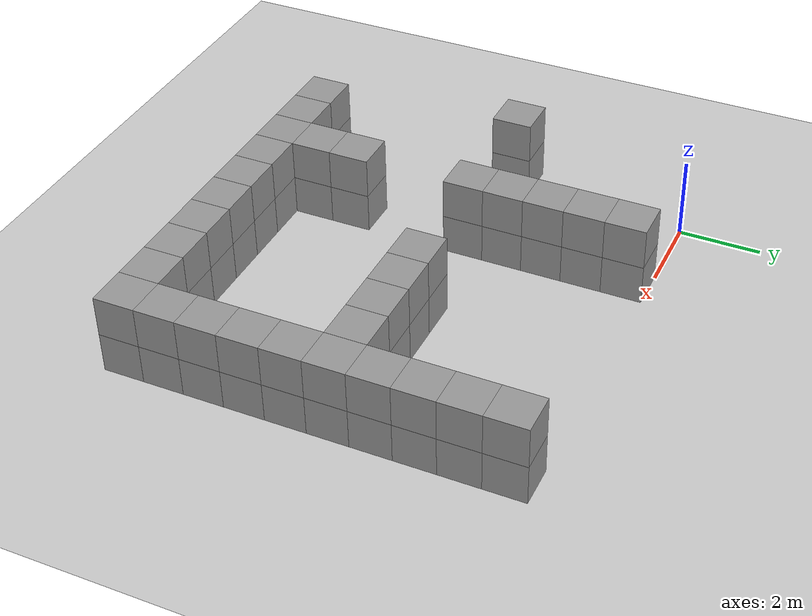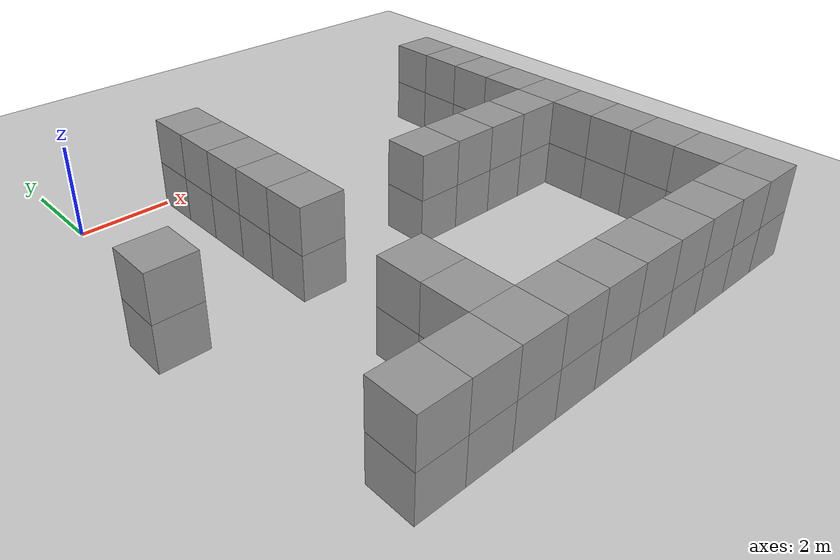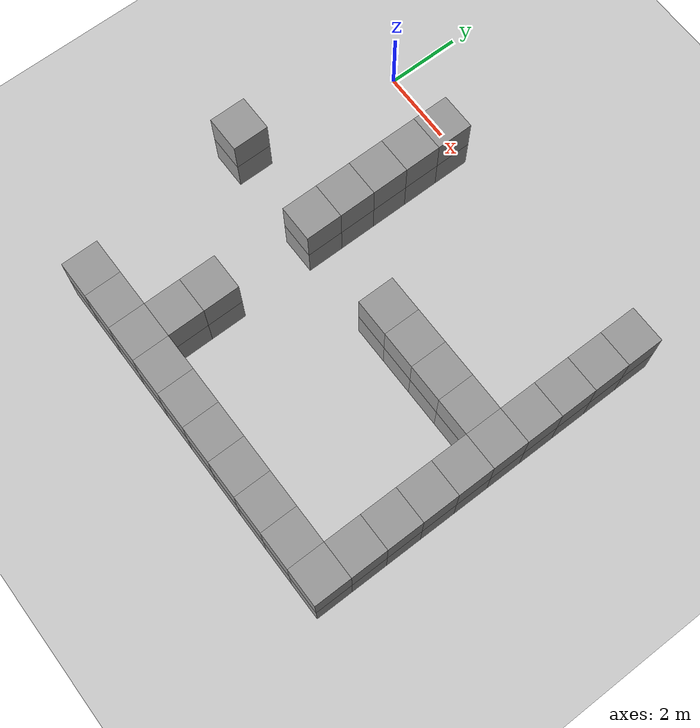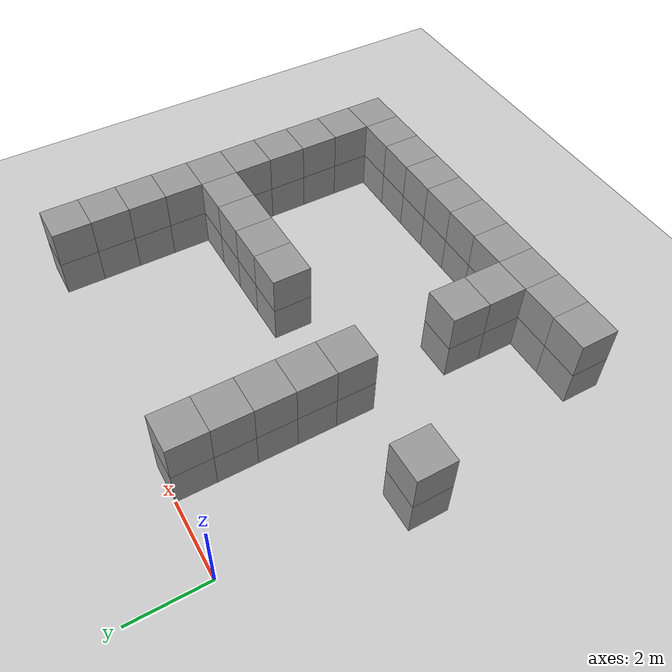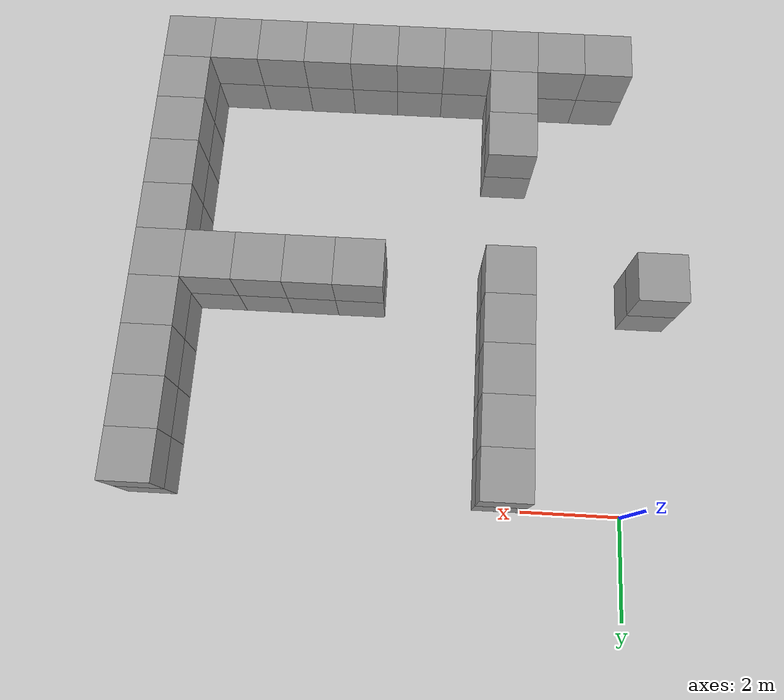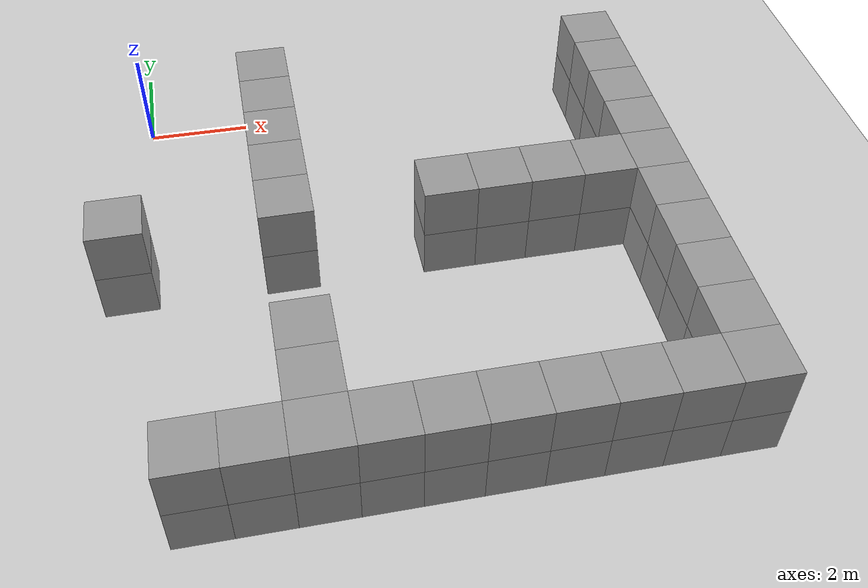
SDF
<sdf version="1.7">
 <world name="default">
  <model name="ground_plane">
   <static>1</static>
   <link name="link">
    <collision name="collision">
     <geometry><plane><normal>0 0 1</normal><size>100 100</size></plane></geometry>
     <surface>
      <contact><collide_bitmask>65535</collide_bitmask></contact>
      <friction><ode><mu>100</mu><mu2>50</mu2></ode></friction>
     </surface>
    </collision>
    <visual name="visual">
     <cast_shadows>0</cast_shadows>
     <geometry><plane><normal>0 0 1</normal><size>100 100</size></plane></geometry>
     <material>
      <script><uri>file://media/materials/scripts/gazebo.material</uri><name>Gazebo/Grey</name></script>
     </material>
    </visual>
   </link>
  </model>
  <model name="unit_box_clone_1_clone">
   <pose>9.5 -0.5 0.5 0 -0 0</pose>
   <link name="link">
    <inertial>
     <mass>1</mass>
     <inertia>
      <ixx>0.166667</ixx>
      <ixy>0</ixy>
      <ixz>0</ixz>
      <iyy>0.166667</iyy>
      <iyz>0</iyz>
      <izz>0.166667</izz>
     </inertia>
    </inertial>
    <collision name="collision"><geometry><box><size>1 1 1</size></box></geometry></collision>
    <visual name="visual">
     <geometry><box><size>1 1 1</size></box></geometry>
     <material>
      <script><name>Gazebo/Grey</name><uri>file://media/materials/scripts/gazebo.material</uri></script>
     </material>
    </visual>
   </link>
  </model>
  <model name="unit_box_clone_1_clone_0">
   <pose>9.5 -1.5 0.5 0 -0 0</pose>
   <link name="link">
    <inertial>
     <mass>1</mass>
     <inertia>
      <ixx>0.166667</ixx>
      <ixy>0</ixy>
      <ixz>0</ixz>
      <iyy>0.166667</iyy>
      <iyz>0</iyz>
      <izz>0.166667</izz>
     </inertia>
    </inertial>
    <collision name="collision"><geometry><box><size>1 1 1</size></box></geometry></collision>
    <visual name="visual">
     <geometry><box><size>1 1 1</size></box></geometry>
     <material>
      <script><name>Gazebo/Grey</name><uri>file://media/materials/scripts/gazebo.material</uri></script>
     </material>
    </visual>
   </link>
  </model>
  <model name="unit_box_clone_1_clone_0_clone">
   <pose>9.5 -2.5 0.5 0 -0 0</pose>
   <link name="link">
    <inertial>
     <mass>1</mass>
     <inertia>
      <ixx>0.166667</ixx>
      <ixy>0</ixy>
      <ixz>0</ixz>
      <iyy>0.166667</iyy>
      <iyz>0</iyz>
      <izz>0.166667</izz>
     </inertia>
    </inertial>
    <collision name="collision"><geometry><box><size>1 1 1</size></box></geometry></collision>
    <visual name="visual">
     <geometry><box><size>1 1 1</size></box></geometry>
     <material>
      <script><name>Gazebo/Grey</name><uri>file://media/materials/scripts/gazebo.material</uri></script>
     </material>
    </visual>
   </link>
  </model>
  <model name="unit_box_clone_1_clone_0_clone_clone">
   <pose>9.5 -3.5 0.5 0 -0 0</pose>
   <link name="link">
    <inertial>
     <mass>1</mass>
     <inertia>
      <ixx>0.166667</ixx>
      <ixy>0</ixy>
      <ixz>0</ixz>
      <iyy>0.166667</iyy>
      <iyz>0</iyz>
      <izz>0.166667</izz>
     </inertia>
    </inertial>
    <collision name="collision"><geometry><box><size>1 1 1</size></box></geometry></collision>
    <visual name="visual">
     <geometry><box><size>1 1 1</size></box></geometry>
     <material>
      <script><name>Gazebo/Grey</name><uri>file://media/materials/scripts/gazebo.material</uri></script>
     </material>
    </visual>
   </link>
  </model>
  <model name="unit_box_clone_1_clone_0_clone_clone_0">
   <pose>9.5 -4.5 0.5 0 -0 0</pose>
   <link name="link">
    <inertial>
     <mass>1</mass>
     <inertia>
      <ixx>0.166667</ixx>
      <ixy>0</ixy>
      <ixz>0</ixz>
      <iyy>0.166667</iyy>
      <iyz>0</iyz>
      <izz>0.166667</izz>
     </inertia>
    </inertial>
    <collision name="collision"><geometry><box><size>1 1 1</size></box></geometry></collision>
    <visual name="visual">
     <geometry><box><size>1 1 1</size></box></geometry>
     <material>
      <script><name>Gazebo/Grey</name><uri>file://media/materials/scripts/gazebo.material</uri></script>
     </material>
    </visual>
   </link>
  </model>
  <model name="unit_box_clone_1_clone_0_clone_clone_1">
   <pose>8.5 -4.5 0.5 0 -0 0</pose>
   <link name="link">
    <inertial>
     <mass>1</mass>
     <inertia>
      <ixx>0.166667</ixx>
      <ixy>0</ixy>
      <ixz>0</ixz>
      <iyy>0.166667</iyy>
      <iyz>0</iyz>
      <izz>0.166667</izz>
     </inertia>
    </inertial>
    <collision name="collision"><geometry><box><size>1 1 1</size></box></geometry></collision>
    <visual name="visual">
     <geometry><box><size>1 1 1</size></box></geometry>
     <material>
      <script><name>Gazebo/Grey</name><uri>file://media/materials/scripts/gazebo.material</uri></script>
     </material>
    </visual>
   </link>
  </model>
  <model name="unit_box_clone_1_clone_0_clone_clone_2">
   <pose>7.5 -4.5 0.5 0 -0 0</pose>
   <link name="link">
    <inertial>
     <mass>1</mass>
     <inertia>
      <ixx>0.166667</ixx>
      <ixy>0</ixy>
      <ixz>0</ixz>
      <iyy>0.166667</iyy>
      <iyz>0</iyz>
      <izz>0.166667</izz>
     </inertia>
    </inertial>
    <collision name="collision"><geometry><box><size>1 1 1</size></box></geometry></collision>
    <visual name="visual">
     <geometry><box><size>1 1 1</size></box></geometry>
     <material>
      <script><name>Gazebo/Grey</name><uri>file://media/materials/scripts/gazebo.material</uri></script>
     </material>
    </visual>
   </link>
  </model>
  <model name="unit_box_clone_1_clone_0_clone_clone_3">
   <pose>6.5 -4.5 0.5 0 -0 0</pose>
   <link name="link">
    <inertial>
     <mass>1</mass>
     <inertia>
      <ixx>0.166667</ixx>
      <ixy>0</ixy>
      <ixz>0</ixz>
      <iyy>0.166667</iyy>
      <iyz>0</iyz>
      <izz>0.166667</izz>
     </inertia>
    </inertial>
    <collision name="collision"><geometry><box><size>1 1 1</size></box></geometry></collision>
    <visual name="visual">
     <geometry><box><size>1 1 1</size></box></geometry>
     <material>
      <script><name>Gazebo/Grey</name><uri>file://media/materials/scripts/gazebo.material</uri></script>
     </material>
    </visual>
   </link>
  </model>
  <model name="unit_box_clone_1_clone_0_clone_clone_4">
   <pose>5.5 -4.5 0.5 0 -0 0</pose>
   <link name="link">
    <inertial>
     <mass>1</mass>
     <inertia>
      <ixx>0.166667</ixx>
      <ixy>0</ixy>
      <ixz>0</ixz>
      <iyy>0.166667</iyy>
      <iyz>0</iyz>
      <izz>0.166667</izz>
     </inertia>
    </inertial>
    <collision name="collision"><geometry><box><size>1 1 1</size></box></geometry></collision>
    <visual name="visual">
     <geometry><box><size>1 1 1</size></box></geometry>
     <material>
      <script><name>Gazebo/Grey</name><uri>file://media/materials/scripts/gazebo.material</uri></script>
     </material>
    </visual>
   </link>
  </model>
  <model name="unit_box_clone_0_clone_clone_3_clone">
   <pose>9.5 -0.5 1.5 0 -0 0</pose>
   <link name="link">
    <inertial>
     <mass>1</mass>
     <inertia>
      <ixx>0.166667</ixx>
      <ixy>0</ixy>
      <ixz>0</ixz>
      <iyy>0.166667</iyy>
      <iyz>0</iyz>
      <izz>0.166667</izz>
     </inertia>
    </inertial>
    <collision name="collision"><geometry><box><size>1 1 1</size></box></geometry></collision>
    <visual name="visual">
     <geometry><box><size>1 1 1</size></box></geometry>
     <material>
      <script><name>Gazebo/Grey</name><uri>file://media/materials/scripts/gazebo.material</uri></script>
     </material>
    </visual>
   </link>
  </model>
  <model name="unit_box_clone_0_clone_clone_3_clone_0">
   <pose>9.5 -1.5 1.5 0 -0 0</pose>
   <link name="link">
    <inertial>
     <mass>1</mass>
     <inertia>
      <ixx>0.166667</ixx>
      <ixy>0</ixy>
      <ixz>0</ixz>
      <iyy>0.166667</iyy>
      <iyz>0</iyz>
      <izz>0.166667</izz>
     </inertia>
    </inertial>
    <collision name="collision"><geometry><box><size>1 1 1</size></box></geometry></collision>
    <visual name="visual">
     <geometry><box><size>1 1 1</size></box></geometry>
     <material>
      <script><name>Gazebo/Grey</name><uri>file://media/materials/scripts/gazebo.material</uri></script>
     </material>
    </visual>
   </link>
  </model>
  <model name="unit_box_clone_0_clone_clone_3_clone_1">
   <pose>9.5 -2.5 1.5 0 -0 0</pose>
   <link name="link">
    <inertial>
     <mass>1</mass>
     <inertia>
      <ixx>0.166667</ixx>
      <ixy>0</ixy>
      <ixz>0</ixz>
      <iyy>0.166667</iyy>
      <iyz>0</iyz>
      <izz>0.166667</izz>
     </inertia>
    </inertial>
    <collision name="collision"><geometry><box><size>1 1 1</size></box></geometry></collision>
    <visual name="visual">
     <geometry><box><size>1 1 1</size></box></geometry>
     <material>
      <script><name>Gazebo/Grey</name><uri>file://media/materials/scripts/gazebo.material</uri></script>
     </material>
    </visual>
   </link>
  </model>
  <model name="unit_box_clone_0_clone_clone_3_clone_2">
   <pose>9.5 -3.5 1.5 0 -0 0</pose>
   <link name="link">
    <inertial>
     <mass>1</mass>
     <inertia>
      <ixx>0.166667</ixx>
      <ixy>0</ixy>
      <ixz>0</ixz>
      <iyy>0.166667</iyy>
      <iyz>0</iyz>
      <izz>0.166667</izz>
     </inertia>
    </inertial>
    <collision name="collision"><geometry><box><size>1 1 1</size></box></geometry></collision>
    <visual name="visual">
     <geometry><box><size>1 1 1</size></box></geometry>
     <material>
      <script><name>Gazebo/Grey</name><uri>file://media/materials/scripts/gazebo.material</uri></script>
     </material>
    </visual>
   </link>
  </model>
  <model name="unit_box_clone_0_clone_clone_3_clone_3">
   <pose>9.5 -4.5 1.5 0 -0 0</pose>
   <link name="link">
    <inertial>
     <mass>1</mass>
     <inertia>
      <ixx>0.166667</ixx>
      <ixy>0</ixy>
      <ixz>0</ixz>
      <iyy>0.166667</iyy>
      <iyz>0</iyz>
      <izz>0.166667</izz>
     </inertia>
    </inertial>
    <collision name="collision"><geometry><box><size>1 1 1</size></box></geometry></collision>
    <visual name="visual">
     <geometry><box><size>1 1 1</size></box></geometry>
     <material>
      <script><name>Gazebo/Grey</name><uri>file://media/materials/scripts/gazebo.material</uri></script>
     </material>
    </visual>
   </link>
  </model>
  <model name="unit_box_clone_0_clone_clone_3_clone_4">
   <pose>8.5 -4.5 1.5 0 -0 0</pose>
   <link name="link">
    <inertial>
     <mass>1</mass>
     <inertia>
      <ixx>0.166667</ixx>
      <ixy>0</ixy>
      <ixz>0</ixz>
      <iyy>0.166667</iyy>
      <iyz>0</iyz>
      <izz>0.166667</izz>
     </inertia>
    </inertial>
    <collision name="collision"><geometry><box><size>1 1 1</size></box></geometry></collision>
    <visual name="visual">
     <geometry><box><size>1 1 1</size></box></geometry>
     <material>
      <script><name>Gazebo/Grey</name><uri>file://media/materials/scripts/gazebo.material</uri></script>
     </material>
    </visual>
   </link>
  </model>
  <model name="unit_box_clone_0_clone_clone_3_clone_5">
   <pose>7.5 -4.5 1.5 0 -0 0</pose>
   <link name="link">
    <inertial>
     <mass>1</mass>
     <inertia>
      <ixx>0.166667</ixx>
      <ixy>0</ixy>
      <ixz>0</ixz>
      <iyy>0.166667</iyy>
      <iyz>0</iyz>
      <izz>0.166667</izz>
     </inertia>
    </inertial>
    <collision name="collision"><geometry><box><size>1 1 1</size></box></geometry></collision>
    <visual name="visual">
     <geometry><box><size>1 1 1</size></box></geometry>
     <material>
      <script><name>Gazebo/Grey</name><uri>file://media/materials/scripts/gazebo.material</uri></script>
     </material>
    </visual>
   </link>
  </model>
  <model name="unit_box_clone_0_clone_clone_3_clone_6">
   <pose>6.5 -4.5 1.5 0 -0 0</pose>
   <link name="link">
    <inertial>
     <mass>1</mass>
     <inertia>
      <ixx>0.166667</ixx>
      <ixy>0</ixy>
      <ixz>0</ixz>
      <iyy>0.166667</iyy>
      <iyz>0</iyz>
      <izz>0.166667</izz>
     </inertia>
    </inertial>
    <collision name="collision"><geometry><box><size>1 1 1</size></box></geometry></collision>
    <visual name="visual">
     <geometry><box><size>1 1 1</size></box></geometry>
     <material>
      <script><name>Gazebo/Grey</name><uri>file://media/materials/scripts/gazebo.material</uri></script>
     </material>
    </visual>
   </link>
  </model>
  <model name="unit_box_clone_0_clone_clone_3_clone_7">
   <pose>5.5 -4.5 1.5 0 -0 0</pose>
   <link name="link">
    <inertial>
     <mass>1</mass>
     <inertia>
      <ixx>0.166667</ixx>
      <ixy>0</ixy>
      <ixz>0</ixz>
      <iyy>0.166667</iyy>
      <iyz>0</iyz>
      <izz>0.166667</izz>
     </inertia>
    </inertial>
    <collision name="collision"><geometry><box><size>1 1 1</size></box></geometry></collision>
    <visual name="visual">
     <geometry><box><size>1 1 1</size></box></geometry>
     <material>
      <script><name>Gazebo/Grey</name><uri>file://media/materials/scripts/gazebo.material</uri></script>
     </material>
    </visual>
   </link>
  </model>
  <model name="unit_box_clone_7_clone_18_clone_3_clone_clone_3_clone_9_clone_2">
   <pose>-0.5 -4.5 0.5 0 -0 0</pose>
   <link name="link">
    <inertial>
     <mass>1</mass>
     <inertia>
      <ixx>0.166667</ixx>
      <ixy>0</ixy>
      <ixz>0</ixz>
      <iyy>0.166667</iyy>
      <iyz>0</iyz>
      <izz>0.166667</izz>
     </inertia>
    </inertial>
    <collision name="collision"><geometry><box><size>1 1 1</size></box></geometry></collision>
    <visual name="visual">
     <geometry><box><size>1 1 1</size></box></geometry>
     <material>
      <script><name>Gazebo/Grey</name><uri>file://media/materials/scripts/gazebo.material</uri></script>
     </material>
    </visual>
   </link>
  </model>
  <model name="unit_box_clone_0_clone_clone_26_clone_2_clone_1_clone_0_clone_13">
   <pose>-0.5 -4.5 1.5 0 -0 0</pose>
   <link name="link">
    <inertial>
     <mass>1</mass>
     <inertia>
      <ixx>0.166667</ixx>
      <ixy>0</ixy>
      <ixz>0</ixz>
      <iyy>0.166667</iyy>
      <iyz>0</iyz>
      <izz>0.166667</izz>
     </inertia>
    </inertial>
    <collision name="collision"><geometry><box><size>1 1 1</size></box></geometry></collision>
    <visual name="visual">
     <geometry><box><size>1 1 1</size></box></geometry>
     <material>
      <script><name>Gazebo/Grey</name><uri>file://media/materials/scripts/gazebo.material</uri></script>
     </material>
    </visual>
   </link>
  </model>
  <model name="unit_box_clone_27_clone_clone_clone_clone_clone_2_clone_2">
   <pose>2.5 -0.5 0.5 0 -0 0</pose>
   <link name="link">
    <inertial>
     <mass>1</mass>
     <inertia>
      <ixx>0.166667</ixx>
      <ixy>0</ixy>
      <ixz>0</ixz>
      <iyy>0.166667</iyy>
      <iyz>0</iyz>
      <izz>0.166667</izz>
     </inertia>
    </inertial>
    <collision name="collision"><geometry><box><size>1 1 1</size></box></geometry></collision>
    <visual name="visual">
     <geometry><box><size>1 1 1</size></box></geometry>
     <material>
      <script><name>Gazebo/Grey</name><uri>file://media/materials/scripts/gazebo.material</uri></script>
     </material>
    </visual>
   </link>
  </model>
  <model name="unit_box_clone_27_clone_clone_clone_clone_clone_2_clone_3">
   <pose>2.5 -1.5 0.5 0 -0 0</pose>
   <link name="link">
    <inertial>
     <mass>1</mass>
     <inertia>
      <ixx>0.166667</ixx>
      <ixy>0</ixy>
      <ixz>0</ixz>
      <iyy>0.166667</iyy>
      <iyz>0</iyz>
      <izz>0.166667</izz>
     </inertia>
    </inertial>
    <collision name="collision"><geometry><box><size>1 1 1</size></box></geometry></collision>
    <visual name="visual">
     <geometry><box><size>1 1 1</size></box></geometry>
     <material>
      <script><name>Gazebo/Grey</name><uri>file://media/materials/scripts/gazebo.material</uri></script>
     </material>
    </visual>
   </link>
  </model>
  <model name="unit_box_clone_27_clone_clone_clone_clone_clone_2_clone_4">
   <pose>2.5 -2.5 0.5 0 -0 0</pose>
   <link name="link">
    <inertial>
     <mass>1</mass>
     <inertia>
      <ixx>0.166667</ixx>
      <ixy>0</ixy>
      <ixz>0</ixz>
      <iyy>0.166667</iyy>
      <iyz>0</iyz>
      <izz>0.166667</izz>
     </inertia>
    </inertial>
    <collision name="collision"><geometry><box><size>1 1 1</size></box></geometry></collision>
    <visual name="visual">
     <geometry><box><size>1 1 1</size></box></geometry>
     <material>
      <script><name>Gazebo/Grey</name><uri>file://media/materials/scripts/gazebo.material</uri></script>
     </material>
    </visual>
   </link>
  </model>
  <model name="unit_box_clone_27_clone_clone_clone_clone_clone_2_clone_5">
   <pose>2.5 -3.5 0.5 0 -0 0</pose>
   <link name="link">
    <inertial>
     <mass>1</mass>
     <inertia>
      <ixx>0.166667</ixx>
      <ixy>0</ixy>
      <ixz>0</ixz>
      <iyy>0.166667</iyy>
      <iyz>0</iyz>
      <izz>0.166667</izz>
     </inertia>
    </inertial>
    <collision name="collision"><geometry><box><size>1 1 1</size></box></geometry></collision>
    <visual name="visual">
     <geometry><box><size>1 1 1</size></box></geometry>
     <material>
      <script><name>Gazebo/Grey</name><uri>file://media/materials/scripts/gazebo.material</uri></script>
     </material>
    </visual>
   </link>
  </model>
  <model name="unit_box_clone_27_clone_clone_clone_clone_clone_2_clone_6">
   <pose>2.5 -4.5 0.5 0 -0 0</pose>
   <link name="link">
    <inertial>
     <mass>1</mass>
     <inertia>
      <ixx>0.166667</ixx>
      <ixy>0</ixy>
      <ixz>0</ixz>
      <iyy>0.166667</iyy>
      <iyz>0</iyz>
      <izz>0.166667</izz>
     </inertia>
    </inertial>
    <collision name="collision"><geometry><box><size>1 1 1</size></box></geometry></collision>
    <visual name="visual">
     <geometry><box><size>1 1 1</size></box></geometry>
     <material>
      <script><name>Gazebo/Grey</name><uri>file://media/materials/scripts/gazebo.material</uri></script>
     </material>
    </visual>
   </link>
  </model>
  <model name="unit_box_clone_0_clone_clone_26_clone_2_clone_1_clone_0_clone_17_clone_2">
   <pose>2.5 -0.5 1.5 0 -0 0</pose>
   <link name="link">
    <inertial>
     <mass>1</mass>
     <inertia>
      <ixx>0.166667</ixx>
      <ixy>0</ixy>
      <ixz>0</ixz>
      <iyy>0.166667</iyy>
      <iyz>0</iyz>
      <izz>0.166667</izz>
     </inertia>
    </inertial>
    <collision name="collision"><geometry><box><size>1 1 1</size></box></geometry></collision>
    <visual name="visual">
     <geometry><box><size>1 1 1</size></box></geometry>
     <material>
      <script><name>Gazebo/Grey</name><uri>file://media/materials/scripts/gazebo.material</uri></script>
     </material>
    </visual>
   </link>
  </model>
  <model name="unit_box_clone_0_clone_clone_26_clone_2_clone_1_clone_0_clone_17_clone_3">
   <pose>2.5 -1.5 1.5 0 -0 0</pose>
   <link name="link">
    <inertial>
     <mass>1</mass>
     <inertia>
      <ixx>0.166667</ixx>
      <ixy>0</ixy>
      <ixz>0</ixz>
      <iyy>0.166667</iyy>
      <iyz>0</iyz>
      <izz>0.166667</izz>
     </inertia>
    </inertial>
    <collision name="collision"><geometry><box><size>1 1 1</size></box></geometry></collision>
    <visual name="visual">
     <geometry><box><size>1 1 1</size></box></geometry>
     <material>
      <script><name>Gazebo/Grey</name><uri>file://media/materials/scripts/gazebo.material</uri></script>
     </material>
    </visual>
   </link>
  </model>
  <model name="unit_box_clone_0_clone_clone_26_clone_2_clone_1_clone_0_clone_17_clone_4">
   <pose>2.5 -2.5 1.5 0 -0 0</pose>
   <link name="link">
    <inertial>
     <mass>1</mass>
     <inertia>
      <ixx>0.166667</ixx>
      <ixy>0</ixy>
      <ixz>0</ixz>
      <iyy>0.166667</iyy>
      <iyz>0</iyz>
      <izz>0.166667</izz>
     </inertia>
    </inertial>
    <collision name="collision"><geometry><box><size>1 1 1</size></box></geometry></collision>
    <visual name="visual">
     <geometry><box><size>1 1 1</size></box></geometry>
     <material>
      <script><name>Gazebo/Grey</name><uri>file://media/materials/scripts/gazebo.material</uri></script>
     </material>
    </visual>
   </link>
  </model>
  <model name="unit_box_clone_0_clone_clone_26_clone_2_clone_1_clone_0_clone_17_clone_5">
   <pose>2.5 -3.5 1.5 0 -0 0</pose>
   <link name="link">
    <inertial>
     <mass>1</mass>
     <inertia>
      <ixx>0.166667</ixx>
      <ixy>0</ixy>
      <ixz>0</ixz>
      <iyy>0.166667</iyy>
      <iyz>0</iyz>
      <izz>0.166667</izz>
     </inertia>
    </inertial>
    <collision name="collision"><geometry><box><size>1 1 1</size></box></geometry></collision>
    <visual name="visual">
     <geometry><box><size>1 1 1</size></box></geometry>
     <material>
      <script><name>Gazebo/Grey</name><uri>file://media/materials/scripts/gazebo.material</uri></script>
     </material>
    </visual>
   </link>
  </model>
  <model name="unit_box_clone_0_clone_clone_26_clone_2_clone_1_clone_0_clone_17_clone_6">
   <pose>2.5 -4.5 1.5 0 -0 0</pose>
   <link name="link">
    <inertial>
     <mass>1</mass>
     <inertia>
      <ixx>0.166667</ixx>
      <ixy>0</ixy>
      <ixz>0</ixz>
      <iyy>0.166667</iyy>
      <iyz>0</iyz>
      <izz>0.166667</izz>
     </inertia>
    </inertial>
    <collision name="collision"><geometry><box><size>1 1 1</size></box></geometry></collision>
    <visual name="visual">
     <geometry><box><size>1 1 1</size></box></geometry>
     <material>
      <script><name>Gazebo/Grey</name><uri>file://media/materials/scripts/gazebo.material</uri></script>
     </material>
    </visual>
   </link>
  </model>
  <model name="unit_box_clone_7_clone_9_clone_34_clone_3">
   <pose>0.5 -9.5 0.5 0 -0 0</pose>
   <link name="link">
    <inertial>
     <mass>1</mass>
     <inertia>
      <ixx>0.166667</ixx>
      <ixy>0</ixy>
      <ixz>0</ixz>
      <iyy>0.166667</iyy>
      <iyz>0</iyz>
      <izz>0.166667</izz>
     </inertia>
    </inertial>
    <collision name="collision"><geometry><box><size>1 1 1</size></box></geometry></collision>
    <visual name="visual">
     <geometry><box><size>1 1 1</size></box></geometry>
     <material>
      <script><name>Gazebo/Grey</name><uri>file://media/materials/scripts/gazebo.material</uri></script>
     </material>
    </visual>
   </link>
  </model>
  <model name="unit_box_clone_7_clone_9_clone_34_clone_4">
   <pose>1.5 -9.5 0.5 0 -0 0</pose>
   <link name="link">
    <inertial>
     <mass>1</mass>
     <inertia>
      <ixx>0.166667</ixx>
      <ixy>0</ixy>
      <ixz>0</ixz>
      <iyy>0.166667</iyy>
      <iyz>0</iyz>
      <izz>0.166667</izz>
     </inertia>
    </inertial>
    <collision name="collision"><geometry><box><size>1 1 1</size></box></geometry></collision>
    <visual name="visual">
     <geometry><box><size>1 1 1</size></box></geometry>
     <material>
      <script><name>Gazebo/Grey</name><uri>file://media/materials/scripts/gazebo.material</uri></script>
     </material>
    </visual>
   </link>
  </model>
  <model name="unit_box_clone_7_clone_9_clone_34_clone_5">
   <pose>2.5 -9.5 0.5 0 -0 0</pose>
   <link name="link">
    <inertial>
     <mass>1</mass>
     <inertia>
      <ixx>0.166667</ixx>
      <ixy>0</ixy>
      <ixz>0</ixz>
      <iyy>0.166667</iyy>
      <iyz>0</iyz>
      <izz>0.166667</izz>
     </inertia>
    </inertial>
    <collision name="collision"><geometry><box><size>1 1 1</size></box></geometry></collision>
    <visual name="visual">
     <geometry><box><size>1 1 1</size></box></geometry>
     <material>
      <script><name>Gazebo/Grey</name><uri>file://media/materials/scripts/gazebo.material</uri></script>
     </material>
    </visual>
   </link>
  </model>
  <model name="unit_box_clone_7_clone_9_clone_34_clone_6">
   <pose>2.5 -8.5 0.5 0 -0 0</pose>
   <link name="link">
    <inertial>
     <mass>1</mass>
     <inertia>
      <ixx>0.166667</ixx>
      <ixy>0</ixy>
      <ixz>0</ixz>
      <iyy>0.166667</iyy>
      <iyz>0</iyz>
      <izz>0.166667</izz>
     </inertia>
    </inertial>
    <collision name="collision"><geometry><box><size>1 1 1</size></box></geometry></collision>
    <visual name="visual">
     <geometry><box><size>1 1 1</size></box></geometry>
     <material>
      <script><name>Gazebo/Grey</name><uri>file://media/materials/scripts/gazebo.material</uri></script>
     </material>
    </visual>
   </link>
  </model>
  <model name="unit_box_clone_7_clone_9_clone_34_clone_7">
   <pose>2.5 -7.5 0.5 0 -0 0</pose>
   <link name="link">
    <inertial>
     <mass>1</mass>
     <inertia>
      <ixx>0.166667</ixx>
      <ixy>0</ixy>
      <ixz>0</ixz>
      <iyy>0.166667</iyy>
      <iyz>0</iyz>
      <izz>0.166667</izz>
     </inertia>
    </inertial>
    <collision name="collision"><geometry><box><size>1 1 1</size></box></geometry></collision>
    <visual name="visual">
     <geometry><box><size>1 1 1</size></box></geometry>
     <material>
      <script><name>Gazebo/Grey</name><uri>file://media/materials/scripts/gazebo.material</uri></script>
     </material>
    </visual>
   </link>
  </model>
  <model name="unit_box_clone_7_clone_9_clone_34_clone_8">
   <pose>3.5 -9.5 0.5 0 -0 0</pose>
   <link name="link">
    <inertial>
     <mass>1</mass>
     <inertia>
      <ixx>0.166667</ixx>
      <ixy>0</ixy>
      <ixz>0</ixz>
      <iyy>0.166667</iyy>
      <iyz>0</iyz>
      <izz>0.166667</izz>
     </inertia>
    </inertial>
    <collision name="collision"><geometry><box><size>1 1 1</size></box></geometry></collision>
    <visual name="visual">
     <geometry><box><size>1 1 1</size></box></geometry>
     <material>
      <script><name>Gazebo/Grey</name><uri>file://media/materials/scripts/gazebo.material</uri></script>
     </material>
    </visual>
   </link>
  </model>
  <model name="unit_box_clone_7_clone_9_clone_34_clone_9">
   <pose>4.5 -9.5 0.5 0 -0 0</pose>
   <link name="link">
    <inertial>
     <mass>1</mass>
     <inertia>
      <ixx>0.166667</ixx>
      <ixy>0</ixy>
      <ixz>0</ixz>
      <iyy>0.166667</iyy>
      <iyz>0</iyz>
      <izz>0.166667</izz>
     </inertia>
    </inertial>
    <collision name="collision"><geometry><box><size>1 1 1</size></box></geometry></collision>
    <visual name="visual">
     <geometry><box><size>1 1 1</size></box></geometry>
     <material>
      <script><name>Gazebo/Grey</name><uri>file://media/materials/scripts/gazebo.material</uri></script>
     </material>
    </visual>
   </link>
  </model>
  <model name="unit_box_clone_7_clone_9_clone_34_clone_10">
   <pose>5.5 -9.5 0.5 0 -0 0</pose>
   <link name="link">
    <inertial>
     <mass>1</mass>
     <inertia>
      <ixx>0.166667</ixx>
      <ixy>0</ixy>
      <ixz>0</ixz>
      <iyy>0.166667</iyy>
      <iyz>0</iyz>
      <izz>0.166667</izz>
     </inertia>
    </inertial>
    <collision name="collision"><geometry><box><size>1 1 1</size></box></geometry></collision>
    <visual name="visual">
     <geometry><box><size>1 1 1</size></box></geometry>
     <material>
      <script><name>Gazebo/Grey</name><uri>file://media/materials/scripts/gazebo.material</uri></script>
     </material>
    </visual>
   </link>
  </model>
  <model name="unit_box_clone_7_clone_9_clone_34_clone_11">
   <pose>6.5 -9.5 0.5 0 -0 0</pose>
   <link name="link">
    <inertial>
     <mass>1</mass>
     <inertia>
      <ixx>0.166667</ixx>
      <ixy>0</ixy>
      <ixz>0</ixz>
      <iyy>0.166667</iyy>
      <iyz>0</iyz>
      <izz>0.166667</izz>
     </inertia>
    </inertial>
    <collision name="collision"><geometry><box><size>1 1 1</size></box></geometry></collision>
    <visual name="visual">
     <geometry><box><size>1 1 1</size></box></geometry>
     <material>
      <script><name>Gazebo/Grey</name><uri>file://media/materials/scripts/gazebo.material</uri></script>
     </material>
    </visual>
   </link>
  </model>
  <model name="unit_box_clone_7_clone_9_clone_34_clone_12">
   <pose>7.5 -9.5 0.5 0 -0 0</pose>
   <link name="link">
    <inertial>
     <mass>1</mass>
     <inertia>
      <ixx>0.166667</ixx>
      <ixy>0</ixy>
      <ixz>0</ixz>
      <iyy>0.166667</iyy>
      <iyz>0</iyz>
      <izz>0.166667</izz>
     </inertia>
    </inertial>
    <collision name="collision"><geometry><box><size>1 1 1</size></box></geometry></collision>
    <visual name="visual">
     <geometry><box><size>1 1 1</size></box></geometry>
     <material>
      <script><name>Gazebo/Grey</name><uri>file://media/materials/scripts/gazebo.material</uri></script>
     </material>
    </visual>
   </link>
  </model>
  <model name="unit_box_clone_7_clone_9_clone_34_clone_13">
   <pose>8.5 -9.5 0.5 0 -0 0</pose>
   <link name="link">
    <inertial>
     <mass>1</mass>
     <inertia>
      <ixx>0.166667</ixx>
      <ixy>0</ixy>
      <ixz>0</ixz>
      <iyy>0.166667</iyy>
      <iyz>0</iyz>
      <izz>0.166667</izz>
     </inertia>
    </inertial>
    <collision name="collision"><geometry><box><size>1 1 1</size></box></geometry></collision>
    <visual name="visual">
     <geometry><box><size>1 1 1</size></box></geometry>
     <material>
      <script><name>Gazebo/Grey</name><uri>file://media/materials/scripts/gazebo.material</uri></script>
     </material>
    </visual>
   </link>
  </model>
  <model name="unit_box_clone_7_clone_9_clone_34_clone_14">
   <pose>9.5 -9.5 0.5 0 -0 0</pose>
   <link name="link">
    <inertial>
     <mass>1</mass>
     <inertia>
      <ixx>0.166667</ixx>
      <ixy>0</ixy>
      <ixz>0</ixz>
      <iyy>0.166667</iyy>
      <iyz>0</iyz>
      <izz>0.166667</izz>
     </inertia>
    </inertial>
    <collision name="collision"><geometry><box><size>1 1 1</size></box></geometry></collision>
    <visual name="visual">
     <geometry><box><size>1 1 1</size></box></geometry>
     <material>
      <script><name>Gazebo/Grey</name><uri>file://media/materials/scripts/gazebo.material</uri></script>
     </material>
    </visual>
   </link>
  </model>
  <model name="unit_box_clone_7_clone_9_clone_34_clone_15">
   <pose>9.5 -8.5 0.5 0 -0 0</pose>
   <link name="link">
    <inertial>
     <mass>1</mass>
     <inertia>
      <ixx>0.166667</ixx>
      <ixy>0</ixy>
      <ixz>0</ixz>
      <iyy>0.166667</iyy>
      <iyz>0</iyz>
      <izz>0.166667</izz>
     </inertia>
    </inertial>
    <collision name="collision"><geometry><box><size>1 1 1</size></box></geometry></collision>
    <visual name="visual">
     <geometry><box><size>1 1 1</size></box></geometry>
     <material>
      <script><name>Gazebo/Grey</name><uri>file://media/materials/scripts/gazebo.material</uri></script>
     </material>
    </visual>
   </link>
  </model>
  <model name="unit_box_clone_7_clone_9_clone_34_clone_16">
   <pose>9.5 -7.5 0.5 0 -0 0</pose>
   <link name="link">
    <inertial>
     <mass>1</mass>
     <inertia>
      <ixx>0.166667</ixx>
      <ixy>0</ixy>
      <ixz>0</ixz>
      <iyy>0.166667</iyy>
      <iyz>0</iyz>
      <izz>0.166667</izz>
     </inertia>
    </inertial>
    <collision name="collision"><geometry><box><size>1 1 1</size></box></geometry></collision>
    <visual name="visual">
     <geometry><box><size>1 1 1</size></box></geometry>
     <material>
      <script><name>Gazebo/Grey</name><uri>file://media/materials/scripts/gazebo.material</uri></script>
     </material>
    </visual>
   </link>
  </model>
  <model name="unit_box_clone_7_clone_9_clone_34_clone_17">
   <pose>9.5 -6.5 0.5 0 -0 0</pose>
   <link name="link">
    <inertial>
     <mass>1</mass>
     <inertia>
      <ixx>0.166667</ixx>
      <ixy>0</ixy>
      <ixz>0</ixz>
      <iyy>0.166667</iyy>
      <iyz>0</iyz>
      <izz>0.166667</izz>
     </inertia>
    </inertial>
    <collision name="collision"><geometry><box><size>1 1 1</size></box></geometry></collision>
    <visual name="visual">
     <geometry><box><size>1 1 1</size></box></geometry>
     <material>
      <script><name>Gazebo/Grey</name><uri>file://media/materials/scripts/gazebo.material</uri></script>
     </material>
    </visual>
   </link>
  </model>
  <model name="unit_box_clone_7_clone_9_clone_34_clone_18">
   <pose>9.5 -5.5 0.5 0 -0 0</pose>
   <link name="link">
    <inertial>
     <mass>1</mass>
     <inertia>
      <ixx>0.166667</ixx>
      <ixy>0</ixy>
      <ixz>0</ixz>
      <iyy>0.166667</iyy>
      <iyz>0</iyz>
      <izz>0.166667</izz>
     </inertia>
    </inertial>
    <collision name="collision"><geometry><box><size>1 1 1</size></box></geometry></collision>
    <visual name="visual">
     <geometry><box><size>1 1 1</size></box></geometry>
     <material>
      <script><name>Gazebo/Grey</name><uri>file://media/materials/scripts/gazebo.material</uri></script>
     </material>
    </visual>
   </link>
  </model>
  <model name="unit_box_clone_0_clone_clone_26_clone_18_clone_34">
   <pose>2.5 -7.5 1.5 0 -0 0</pose>
   <link name="link">
    <inertial>
     <mass>1</mass>
     <inertia>
      <ixx>0.166667</ixx>
      <ixy>0</ixy>
      <ixz>0</ixz>
      <iyy>0.166667</iyy>
      <iyz>0</iyz>
      <izz>0.166667</izz>
     </inertia>
    </inertial>
    <collision name="collision"><geometry><box><size>1 1 1</size></box></geometry></collision>
    <visual name="visual">
     <geometry><box><size>1 1 1</size></box></geometry>
     <material>
      <script><name>Gazebo/Grey</name><uri>file://media/materials/scripts/gazebo.material</uri></script>
     </material>
    </visual>
   </link>
  </model>
  <model name="unit_box_clone_0_clone_clone_26_clone_18_clone_35">
   <pose>2.5 -8.5 1.5 0 -0 0</pose>
   <link name="link">
    <inertial>
     <mass>1</mass>
     <inertia>
      <ixx>0.166667</ixx>
      <ixy>0</ixy>
      <ixz>0</ixz>
      <iyy>0.166667</iyy>
      <iyz>0</iyz>
      <izz>0.166667</izz>
     </inertia>
    </inertial>
    <collision name="collision"><geometry><box><size>1 1 1</size></box></geometry></collision>
    <visual name="visual">
     <geometry><box><size>1 1 1</size></box></geometry>
     <material>
      <script><name>Gazebo/Grey</name><uri>file://media/materials/scripts/gazebo.material</uri></script>
     </material>
    </visual>
   </link>
  </model>
  <model name="unit_box_clone_0_clone_clone_26_clone_18_clone_36">
   <pose>2.5 -9.5 1.5 0 -0 0</pose>
   <link name="link">
    <inertial>
     <mass>1</mass>
     <inertia>
      <ixx>0.166667</ixx>
      <ixy>0</ixy>
      <ixz>0</ixz>
      <iyy>0.166667</iyy>
      <iyz>0</iyz>
      <izz>0.166667</izz>
     </inertia>
    </inertial>
    <collision name="collision"><geometry><box><size>1 1 1</size></box></geometry></collision>
    <visual name="visual">
     <geometry><box><size>1 1 1</size></box></geometry>
     <material>
      <script><name>Gazebo/Grey</name><uri>file://media/materials/scripts/gazebo.material</uri></script>
     </material>
    </visual>
   </link>
  </model>
  <model name="unit_box_clone_0_clone_clone_26_clone_18_clone_41">
   <pose>0.5 -9.5 1.5 0 -0 0</pose>
   <link name="link">
    <inertial>
     <mass>1</mass>
     <inertia>
      <ixx>0.166667</ixx>
      <ixy>0</ixy>
      <ixz>0</ixz>
      <iyy>0.166667</iyy>
      <iyz>0</iyz>
      <izz>0.166667</izz>
     </inertia>
    </inertial>
    <collision name="collision"><geometry><box><size>1 1 1</size></box></geometry></collision>
    <visual name="visual">
     <geometry><box><size>1 1 1</size></box></geometry>
     <material>
      <script><name>Gazebo/Grey</name><uri>file://media/materials/scripts/gazebo.material</uri></script>
     </material>
    </visual>
   </link>
  </model>
  <model name="unit_box_clone_0_clone_clone_26_clone_18_clone_42">
   <pose>1.5 -9.5 1.5 0 -0 0</pose>
   <link name="link">
    <inertial>
     <mass>1</mass>
     <inertia>
      <ixx>0.166667</ixx>
      <ixy>0</ixy>
      <ixz>0</ixz>
      <iyy>0.166667</iyy>
      <iyz>0</iyz>
      <izz>0.166667</izz>
     </inertia>
    </inertial>
    <collision name="collision"><geometry><box><size>1 1 1</size></box></geometry></collision>
    <visual name="visual">
     <geometry><box><size>1 1 1</size></box></geometry>
     <material>
      <script><name>Gazebo/Grey</name><uri>file://media/materials/scripts/gazebo.material</uri></script>
     </material>
    </visual>
   </link>
  </model>
  <model name="unit_box_clone_0_clone_clone_26_clone_18_clone_43">
   <pose>9.5 -5.5 1.5 0 -0 0</pose>
   <link name="link">
    <inertial>
     <mass>1</mass>
     <inertia>
      <ixx>0.166667</ixx>
      <ixy>0</ixy>
      <ixz>0</ixz>
      <iyy>0.166667</iyy>
      <iyz>0</iyz>
      <izz>0.166667</izz>
     </inertia>
    </inertial>
    <collision name="collision"><geometry><box><size>1 1 1</size></box></geometry></collision>
    <visual name="visual">
     <geometry><box><size>1 1 1</size></box></geometry>
     <material>
      <script><name>Gazebo/Grey</name><uri>file://media/materials/scripts/gazebo.material</uri></script>
     </material>
    </visual>
   </link>
  </model>
  <model name="unit_box_clone_0_clone_clone_26_clone_18_clone_44">
   <pose>9.5 -6.5 1.5 0 -0 0</pose>
   <link name="link">
    <inertial>
     <mass>1</mass>
     <inertia>
      <ixx>0.166667</ixx>
      <ixy>0</ixy>
      <ixz>0</ixz>
      <iyy>0.166667</iyy>
      <iyz>0</iyz>
      <izz>0.166667</izz>
     </inertia>
    </inertial>
    <collision name="collision"><geometry><box><size>1 1 1</size></box></geometry></collision>
    <visual name="visual">
     <geometry><box><size>1 1 1</size></box></geometry>
     <material>
      <script><name>Gazebo/Grey</name><uri>file://media/materials/scripts/gazebo.material</uri></script>
     </material>
    </visual>
   </link>
  </model>
  <model name="unit_box_clone_0_clone_clone_26_clone_18_clone_45">
   <pose>9.5 -7.5 1.5 0 -0 0</pose>
   <link name="link">
    <inertial>
     <mass>1</mass>
     <inertia>
      <ixx>0.166667</ixx>
      <ixy>0</ixy>
      <ixz>0</ixz>
      <iyy>0.166667</iyy>
      <iyz>0</iyz>
      <izz>0.166667</izz>
     </inertia>
    </inertial>
    <collision name="collision"><geometry><box><size>1 1 1</size></box></geometry></collision>
    <visual name="visual">
     <geometry><box><size>1 1 1</size></box></geometry>
     <material>
      <script><name>Gazebo/Grey</name><uri>file://media/materials/scripts/gazebo.material</uri></script>
     </material>
    </visual>
   </link>
  </model>
  <model name="unit_box_clone_0_clone_clone_26_clone_18_clone_46">
   <pose>9.5 -8.5 1.5 0 -0 0</pose>
   <link name="link">
    <inertial>
     <mass>1</mass>
     <inertia>
      <ixx>0.166667</ixx>
      <ixy>0</ixy>
      <ixz>0</ixz>
      <iyy>0.166667</iyy>
      <iyz>0</iyz>
      <izz>0.166667</izz>
     </inertia>
    </inertial>
    <collision name="collision"><geometry><box><size>1 1 1</size></box></geometry></collision>
    <visual name="visual">
     <geometry><box><size>1 1 1</size></box></geometry>
     <material>
      <script><name>Gazebo/Grey</name><uri>file://media/materials/scripts/gazebo.material</uri></script>
     </material>
    </visual>
   </link>
  </model>
  <model name="unit_box_clone_0_clone_clone_26_clone_18_clone_47">
   <pose>8.5 -9.5 1.5 0 -0 0</pose>
   <link name="link">
    <inertial>
     <mass>1</mass>
     <inertia>
      <ixx>0.166667</ixx>
      <ixy>0</ixy>
      <ixz>0</ixz>
      <iyy>0.166667</iyy>
      <iyz>0</iyz>
      <izz>0.166667</izz>
     </inertia>
    </inertial>
    <collision name="collision"><geometry><box><size>1 1 1</size></box></geometry></collision>
    <visual name="visual">
     <geometry><box><size>1 1 1</size></box></geometry>
     <material>
      <script><name>Gazebo/Grey</name><uri>file://media/materials/scripts/gazebo.material</uri></script>
     </material>
    </visual>
   </link>
  </model>
  <model name="unit_box_clone_0_clone_clone_26_clone_18_clone_48">
   <pose>3.5 -9.5 1.5 0 -0 0</pose>
   <link name="link">
    <inertial>
     <mass>1</mass>
     <inertia>
      <ixx>0.166667</ixx>
      <ixy>0</ixy>
      <ixz>0</ixz>
      <iyy>0.166667</iyy>
      <iyz>0</iyz>
      <izz>0.166667</izz>
     </inertia>
    </inertial>
    <collision name="collision"><geometry><box><size>1 1 1</size></box></geometry></collision>
    <visual name="visual">
     <geometry><box><size>1 1 1</size></box></geometry>
     <material>
      <script><name>Gazebo/Grey</name><uri>file://media/materials/scripts/gazebo.material</uri></script>
     </material>
    </visual>
   </link>
  </model>
  <model name="unit_box_clone_0_clone_clone_26_clone_18_clone_49">
   <pose>4.5 -9.5 1.5 0 -0 0</pose>
   <link name="link">
    <inertial>
     <mass>1</mass>
     <inertia>
      <ixx>0.166667</ixx>
      <ixy>0</ixy>
      <ixz>0</ixz>
      <iyy>0.166667</iyy>
      <iyz>0</iyz>
      <izz>0.166667</izz>
     </inertia>
    </inertial>
    <collision name="collision"><geometry><box><size>1 1 1</size></box></geometry></collision>
    <visual name="visual">
     <geometry><box><size>1 1 1</size></box></geometry>
     <material>
      <script><name>Gazebo/Grey</name><uri>file://media/materials/scripts/gazebo.material</uri></script>
     </material>
    </visual>
   </link>
  </model>
  <model name="unit_box_clone_0_clone_clone_26_clone_18_clone_50">
   <pose>5.5 -9.5 1.5 0 -0 0</pose>
   <link name="link">
    <inertial>
     <mass>1</mass>
     <inertia>
      <ixx>0.166667</ixx>
      <ixy>0</ixy>
      <ixz>0</ixz>
      <iyy>0.166667</iyy>
      <iyz>0</iyz>
      <izz>0.166667</izz>
     </inertia>
    </inertial>
    <collision name="collision"><geometry><box><size>1 1 1</size></box></geometry></collision>
    <visual name="visual">
     <geometry><box><size>1 1 1</size></box></geometry>
     <material>
      <script><name>Gazebo/Grey</name><uri>file://media/materials/scripts/gazebo.material</uri></script>
     </material>
    </visual>
   </link>
  </model>
  <model name="unit_box_clone_0_clone_clone_26_clone_18_clone_51">
   <pose>6.5 -9.5 1.5 0 -0 0</pose>
   <link name="link">
    <inertial>
     <mass>1</mass>
     <inertia>
      <ixx>0.166667</ixx>
      <ixy>0</ixy>
      <ixz>0</ixz>
      <iyy>0.166667</iyy>
      <iyz>0</iyz>
      <izz>0.166667</izz>
     </inertia>
    </inertial>
    <collision name="collision"><geometry><box><size>1 1 1</size></box></geometry></collision>
    <visual name="visual">
     <geometry><box><size>1 1 1</size></box></geometry>
     <material>
      <script><name>Gazebo/Grey</name><uri>file://media/materials/scripts/gazebo.material</uri></script>
     </material>
    </visual>
   </link>
  </model>
  <model name="unit_box_clone_0_clone_clone_26_clone_18_clone_52">
   <pose>7.5 -9.5 1.5 0 -0 0</pose>
   <link name="link">
    <inertial>
     <mass>1</mass>
     <inertia>
      <ixx>0.166667</ixx>
      <ixy>0</ixy>
      <ixz>0</ixz>
      <iyy>0.166667</iyy>
      <iyz>0</iyz>
      <izz>0.166667</izz>
     </inertia>
    </inertial>
    <collision name="collision"><geometry><box><size>1 1 1</size></box></geometry></collision>
    <visual name="visual">
     <geometry><box><size>1 1 1</size></box></geometry>
     <material>
      <script><name>Gazebo/Grey</name><uri>file://media/materials/scripts/gazebo.material</uri></script>
     </material>
    </visual>
   </link>
  </model>
  <model name="unit_box_clone_0_clone_clone_26_clone_18_clone_53">
   <pose>9.5 -9.5 1.5 0 -0 0</pose>
   <link name="link">
    <inertial>
     <mass>1</mass>
     <inertia>
      <ixx>0.166667</ixx>
      <ixy>0</ixy>
      <ixz>0</ixz>
      <iyy>0.166667</iyy>
      <iyz>0</iyz>
      <izz>0.166667</izz>
     </inertia>
    </inertial>
    <collision name="collision"><geometry><box><size>1 1 1</size></box></geometry></collision>
    <visual name="visual">
     <geometry><box><size>1 1 1</size></box></geometry>
     <material>
      <script><name>Gazebo/Grey</name><uri>file://media/materials/scripts/gazebo.material</uri></script>
     </material>
    </visual>
   </link>
  </model>
 </world>
</sdf>
